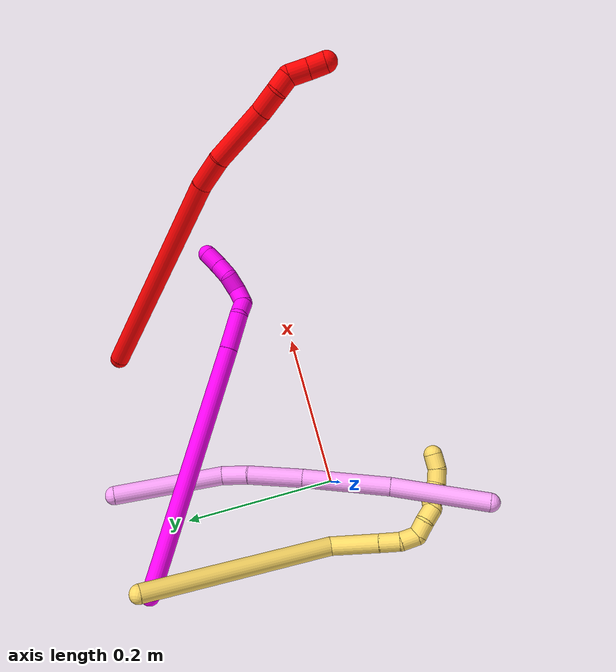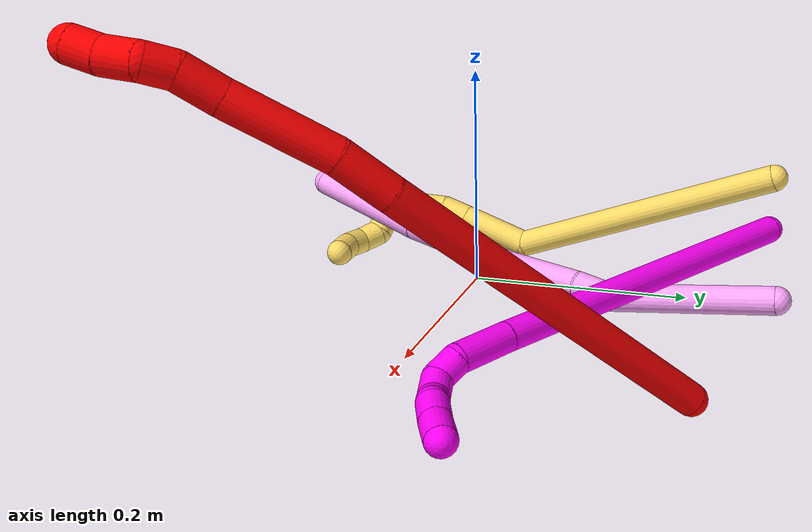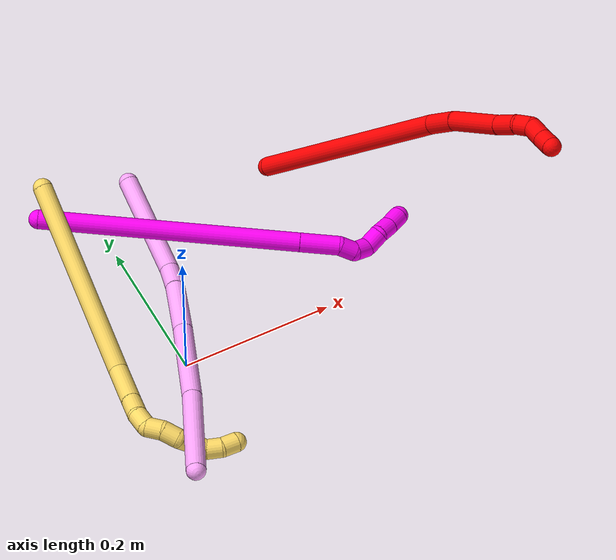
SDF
<sdf version="1.7">
 <world name="default">
  <model name="bin">
   <static>1</static>
   <link name="bottom">
    <collision name="collision-bottom">
     <pose>0 0 -0.01 0 -0 0</pose>
     <geometry><box><size>0.8 0.6 0.02</size></box></geometry>
     <surface>
      <friction><ode><mu>100</mu><mu2>100</mu2></ode></friction>
      <contact><collide_bitmask>65535</collide_bitmask></contact>
     </surface>
    </collision>
   </link>
   <link name="west_wall">
    <collision name="collision-west_wall">
     <pose>-0.41 0 0.1 0 -0 0</pose>
     <geometry><box><size>0.02 0.6 0.2</size></box></geometry>
     <surface>
      <friction><ode><mu>100</mu><mu2>100</mu2></ode></friction>
      <contact><collide_bitmask>65535</collide_bitmask></contact>
     </surface>
    </collision>
   </link>
   <link name="east_wall">
    <collision name="collision-east_wall">
     <pose>0.41 0 0.1 0 -0 0</pose>
     <geometry><box><size>0.02 0.6 0.2</size></box></geometry>
     <surface>
      <friction><ode><mu>100</mu><mu2>100</mu2></ode></friction>
      <contact><collide_bitmask>65535</collide_bitmask></contact>
     </surface>
    </collision>
   </link>
   <link name="south_wall">
    <collision name="collision-south_wall">
     <pose>0 -0.31 0.1 0 -0 0</pose>
     <geometry><box><size>0.8 0.02 0.2</size></box></geometry>
     <surface>
      <friction><ode><mu>100</mu><mu2>100</mu2></ode></friction>
      <contact><collide_bitmask>65535</collide_bitmask></contact>
     </surface>
    </collision>
   </link>
   <link name="north_wall">
    <collision name="collision-north_wall">
     <pose>0 0.31 0.1 0 -0 0</pose>
     <geometry><box><size>0.8 0.02 0.2</size></box></geometry>
     <surface>
      <friction><ode><mu>100</mu><mu2>100</mu2></ode></friction>
      <contact><collide_bitmask>65535</collide_bitmask></contact>
     </surface>
    </collision>
   </link>
  </model>
  <model name="2">
   <static>0</static>
   <link name="2">
    <collision name="collision-cylinder-e_1_1_4">
     <pose>0.062028 -0.040811 0.123555 0.319023 0.444832 0.072735</pose>
     <geometry><cylinder><radius>0.0125</radius><length>0.288296</length></cylinder></geometry>
     <surface>
      <friction><ode><mu>1.16</mu><mu2>1.16</mu2><slip1>0</slip1><slip2>0</slip2></ode></friction>
      <contact><ode><kp>1e+06</kp><kd>1</kd><max_vel>0</max_vel><min_depth>0.001</min_depth></ode></contact>
     </surface>
    </collision>
    <visual name="visual-cylinder-e_1_1_4">
     <pose>0.062028 -0.040811 0.123555 0.319023 0.444832 0.072735</pose>
     <geometry><cylinder><radius>0.0125</radius><length>0.288296</length></cylinder></geometry>
     <material><ambient>1 0 0 1</ambient></material>
    </visual>
    <collision name="collision-cylinder-e_2_4_5">
     <pose>0.130399 -0.088785 0.265115 0.378667 0.316359 0.061115</pose>
     <geometry><cylinder><radius>0.0125</radius><length>0.040781</length></cylinder></geometry>
     <surface>
      <friction><ode><mu>1.16</mu><mu2>1.16</mu2><slip1>0</slip1><slip2>0</slip2></ode></friction>
      <contact><ode><kp>1e+06</kp><kd>1</kd><max_vel>0</max_vel><min_depth>0.001</min_depth></ode></contact>
     </surface>
    </collision>
    <visual name="visual-cylinder-e_2_4_5">
     <pose>0.130399 -0.088785 0.265115 0.378667 0.316359 0.061115</pose>
     <geometry><cylinder><radius>0.0125</radius><length>0.040781</length></cylinder></geometry>
     <material><ambient>1 0 0 1</ambient></material>
    </visual>
    <collision name="collision-cylinder-e_3_5_6">
     <pose>0.147585 -0.11514 0.313843 0.558342 0.29083 0.083912</pose>
     <geometry><cylinder><radius>0.0125</radius><length>0.075623</length></cylinder></geometry>
     <surface>
      <friction><ode><mu>1.16</mu><mu2>1.16</mu2><slip1>0</slip1><slip2>0</slip2></ode></friction>
      <contact><ode><kp>1e+06</kp><kd>1</kd><max_vel>0</max_vel><min_depth>0.001</min_depth></ode></contact>
     </surface>
    </collision>
    <visual name="visual-cylinder-e_3_5_6">
     <pose>0.147585 -0.11514 0.313843 0.558342 0.29083 0.083912</pose>
     <geometry><cylinder><radius>0.0125</radius><length>0.075623</length></cylinder></geometry>
     <material><ambient>1 0 0 1</ambient></material>
    </visual>
    <collision name="collision-cylinder-e_4_6_7">
     <pose>0.163206 -0.140733 0.357169 0.470003 0.325964 0.078702</pose>
     <geometry><cylinder><radius>0.0125</radius><length>0.029845</length></cylinder></geometry>
     <surface>
      <friction><ode><mu>1.16</mu><mu2>1.16</mu2><slip1>0</slip1><slip2>0</slip2></ode></friction>
      <contact><ode><kp>1e+06</kp><kd>1</kd><max_vel>0</max_vel><min_depth>0.001</min_depth></ode></contact>
     </surface>
    </collision>
    <visual name="visual-cylinder-e_4_6_7">
     <pose>0.163206 -0.140733 0.357169 0.470003 0.325964 0.078702</pose>
     <geometry><cylinder><radius>0.0125</radius><length>0.029845</length></cylinder></geometry>
     <material><ambient>1 0 0 1</ambient></material>
    </visual>
    <collision name="collision-cylinder-e_5_7_8">
     <pose>0.172844 -0.153178 0.376415 0.738287 0.495998 0.195301</pose>
     <geometry><cylinder><radius>0.0125</radius><length>0.020419</length></cylinder></geometry>
     <surface>
      <friction><ode><mu>1.16</mu><mu2>1.16</mu2><slip1>0</slip1><slip2>0</slip2></ode></friction>
      <contact><ode><kp>1e+06</kp><kd>1</kd><max_vel>0</max_vel><min_depth>0.001</min_depth></ode></contact>
     </surface>
    </collision>
    <visual name="visual-cylinder-e_5_7_8">
     <pose>0.172844 -0.153178 0.376415 0.738287 0.495998 0.195301</pose>
     <geometry><cylinder><radius>0.0125</radius><length>0.020419</length></cylinder></geometry>
     <material><ambient>1 0 0 1</ambient></material>
    </visual>
    <collision name="collision-cylinder-e_6_8_9">
     <pose>0.177481 -0.169571 0.38925 1.03153 -0.018317 -0.010385</pose>
     <geometry><cylinder><radius>0.0125</radius><length>0.024127</length></cylinder></geometry>
     <surface>
      <friction><ode><mu>1.16</mu><mu2>1.16</mu2><slip1>0</slip1><slip2>0</slip2></ode></friction>
      <contact><ode><kp>1e+06</kp><kd>1</kd><max_vel>0</max_vel><min_depth>0.001</min_depth></ode></contact>
     </surface>
    </collision>
    <visual name="visual-cylinder-e_6_8_9">
     <pose>0.177481 -0.169571 0.38925 1.03153 -0.018317 -0.010385</pose>
     <geometry><cylinder><radius>0.0125</radius><length>0.024127</length></cylinder></geometry>
     <material><ambient>1 0 0 1</ambient></material>
    </visual>
    <collision name="collision-cylinder-e_7_9_2">
     <pose>0.176605 -0.187909 0.402156 0.871936 -0.062768 -0.029249</pose>
     <geometry><cylinder><radius>0.0125</radius><length>0.020909</length></cylinder></geometry>
     <surface>
      <friction><ode><mu>1.16</mu><mu2>1.16</mu2><slip1>0</slip1><slip2>0</slip2></ode></friction>
      <contact><ode><kp>1e+06</kp><kd>1</kd><max_vel>0</max_vel><min_depth>0.001</min_depth></ode></contact>
     </surface>
    </collision>
    <visual name="visual-cylinder-e_7_9_2">
     <pose>0.176605 -0.187909 0.402156 0.871936 -0.062768 -0.029249</pose>
     <geometry><cylinder><radius>0.0125</radius><length>0.020909</length></cylinder></geometry>
     <material><ambient>1 0 0 1</ambient></material>
    </visual>
    <collision name="collision-sphere-2">
     <pose>0.175949 -0.195897 0.408868 0 -0 0</pose>
     <geometry><sphere><radius>0.0125</radius></sphere></geometry>
     <surface>
      <friction><ode><mu>1.16</mu><mu2>1.16</mu2><slip1>0</slip1><slip2>0</slip2></ode></friction>
      <contact><ode><kp>1e+06</kp><kd>1</kd><max_vel>0</max_vel><min_depth>0.001</min_depth></ode></contact>
     </surface>
    </collision>
    <visual name="visual-sphere-2">
     <pose>0.175949 -0.195897 0.408868 0 -0 0</pose>
     <geometry><sphere><radius>0.0125</radius></sphere></geometry>
     <material><ambient>1 0 0 1</ambient></material>
    </visual>
    <collision name="collision-sphere-9">
     <pose>0.177261 -0.179921 0.395443 0 -0 0</pose>
     <geometry><sphere><radius>0.0125</radius></sphere></geometry>
     <surface>
      <friction><ode><mu>1.16</mu><mu2>1.16</mu2><slip1>0</slip1><slip2>0</slip2></ode></friction>
      <contact><ode><kp>1e+06</kp><kd>1</kd><max_vel>0</max_vel><min_depth>0.001</min_depth></ode></contact>
     </surface>
    </collision>
    <visual name="visual-sphere-9">
     <pose>0.177261 -0.179921 0.395443 0 -0 0</pose>
     <geometry><sphere><radius>0.0125</radius></sphere></geometry>
     <material><ambient>1 0 0 1</ambient></material>
    </visual>
    <collision name="collision-sphere-4">
     <pose>0.124056 -0.081621 0.247109 0 -0 0</pose>
     <geometry><sphere><radius>0.0125</radius></sphere></geometry>
     <surface>
      <friction><ode><mu>1.16</mu><mu2>1.16</mu2><slip1>0</slip1><slip2>0</slip2></ode></friction>
      <contact><ode><kp>1e+06</kp><kd>1</kd><max_vel>0</max_vel><min_depth>0.001</min_depth></ode></contact>
     </surface>
    </collision>
    <visual name="visual-sphere-4">
     <pose>0.124056 -0.081621 0.247109 0 -0 0</pose>
     <geometry><sphere><radius>0.0125</radius></sphere></geometry>
     <material><ambient>1 0 0 1</ambient></material>
    </visual>
    <collision name="collision-sphere-1">
     <geometry><sphere><radius>0.0125</radius></sphere></geometry>
     <surface>
      <friction><ode><mu>1.16</mu><mu2>1.16</mu2><slip1>0</slip1><slip2>0</slip2></ode></friction>
      <contact><ode><kp>1e+06</kp><kd>1</kd><max_vel>0</max_vel><min_depth>0.001</min_depth></ode></contact>
     </surface>
    </collision>
    <visual name="visual-sphere-1">
     <geometry><sphere><radius>0.0125</radius></sphere></geometry>
     <material><ambient>1 0 0 1</ambient></material>
    </visual>
    <collision name="collision-sphere-8">
     <pose>0.177702 -0.159222 0.383056 0 -0 0</pose>
     <geometry><sphere><radius>0.0125</radius></sphere></geometry>
     <surface>
      <friction><ode><mu>1.16</mu><mu2>1.16</mu2><slip1>0</slip1><slip2>0</slip2></ode></friction>
      <contact><ode><kp>1e+06</kp><kd>1</kd><max_vel>0</max_vel><min_depth>0.001</min_depth></ode></contact>
     </surface>
    </collision>
    <visual name="visual-sphere-8">
     <pose>0.177702 -0.159222 0.383056 0 -0 0</pose>
     <geometry><sphere><radius>0.0125</radius></sphere></geometry>
     <material><ambient>1 0 0 1</ambient></material>
    </visual>
    <collision name="collision-sphere-5">
     <pose>0.136743 -0.095949 0.283121 0 -0 0</pose>
     <geometry><sphere><radius>0.0125</radius></sphere></geometry>
     <surface>
      <friction><ode><mu>1.16</mu><mu2>1.16</mu2><slip1>0</slip1><slip2>0</slip2></ode></friction>
      <contact><ode><kp>1e+06</kp><kd>1</kd><max_vel>0</max_vel><min_depth>0.001</min_depth></ode></contact>
     </surface>
    </collision>
    <visual name="visual-sphere-5">
     <pose>0.136743 -0.095949 0.283121 0 -0 0</pose>
     <geometry><sphere><radius>0.0125</radius></sphere></geometry>
     <material><ambient>1 0 0 1</ambient></material>
    </visual>
    <collision name="collision-sphere-6">
     <pose>0.158428 -0.13433 0.344566 0 -0 0</pose>
     <geometry><sphere><radius>0.0125</radius></sphere></geometry>
     <surface>
      <friction><ode><mu>1.16</mu><mu2>1.16</mu2><slip1>0</slip1><slip2>0</slip2></ode></friction>
      <contact><ode><kp>1e+06</kp><kd>1</kd><max_vel>0</max_vel><min_depth>0.001</min_depth></ode></contact>
     </surface>
    </collision>
    <visual name="visual-sphere-6">
     <pose>0.158428 -0.13433 0.344566 0 -0 0</pose>
     <geometry><sphere><radius>0.0125</radius></sphere></geometry>
     <material><ambient>1 0 0 1</ambient></material>
    </visual>
    <collision name="collision-sphere-7">
     <pose>0.167985 -0.147135 0.369773 0 -0 0</pose>
     <geometry><sphere><radius>0.0125</radius></sphere></geometry>
     <surface>
      <friction><ode><mu>1.16</mu><mu2>1.16</mu2><slip1>0</slip1><slip2>0</slip2></ode></friction>
      <contact><ode><kp>1e+06</kp><kd>1</kd><max_vel>0</max_vel><min_depth>0.001</min_depth></ode></contact>
     </surface>
    </collision>
    <visual name="visual-sphere-7">
     <pose>0.167985 -0.147135 0.369773 0 -0 0</pose>
     <geometry><sphere><radius>0.0125</radius></sphere></geometry>
     <material><ambient>1 0 0 1</ambient></material>
    </visual>
    <inertial>
     <pose>0.101472 -0.078883 0.212623 0 -0 0</pose>
     <mass>0.5</mass>
     <inertia>
      <ixx>0.00201</ixx>
      <ixy>0</ixy>
      <ixz>0</ixz>
      <iyy>0.002088</iyy>
      <iyz>0</iyz>
      <izz>-0.000251</izz>
     </inertia>
    </inertial>
   </link>
   <pose>0.23869 0.235308 0.011498 0.439195 0.061565 0.044672</pose>
  </model>
  <model name="4">
   <static>0</static>
   <link name="4">
    <collision name="collision-cylinder-e_1_1_4">
     <pose>-0.030497 -0.031331 -0.057813 2.64497 -0.434256 -1.43208</pose>
     <geometry><cylinder><radius>0.0125</radius><length>0.144969</length></cylinder></geometry>
     <surface>
      <friction><ode><mu>1.16</mu><mu2>1.16</mu2><slip1>0</slip1><slip2>0</slip2></ode></friction>
      <contact><ode><kp>1e+06</kp><kd>1</kd><max_vel>0</max_vel><min_depth>0.001</min_depth></ode></contact>
     </surface>
    </collision>
    <visual name="visual-cylinder-e_1_1_4">
     <pose>-0.030497 -0.031331 -0.057813 2.64497 -0.434256 -1.43208</pose>
     <geometry><cylinder><radius>0.0125</radius><length>0.144969</length></cylinder></geometry>
     <material><ambient>1 0.65098 0.996078 1</ambient></material>
    </visual>
    <collision name="collision-cylinder-e_2_4_5">
     <pose>-0.063681 -0.068301 -0.132151 2.81268 -0.152722 -0.863978</pose>
     <geometry><cylinder><radius>0.0125</radius><length>0.035333</length></cylinder></geometry>
     <surface>
      <friction><ode><mu>1.16</mu><mu2>1.16</mu2><slip1>0</slip1><slip2>0</slip2></ode></friction>
      <contact><ode><kp>1e+06</kp><kd>1</kd><max_vel>0</max_vel><min_depth>0.001</min_depth></ode></contact>
     </surface>
    </collision>
    <visual name="visual-cylinder-e_2_4_5">
     <pose>-0.063681 -0.068301 -0.132151 2.81268 -0.152722 -0.863978</pose>
     <geometry><cylinder><radius>0.0125</radius><length>0.035333</length></cylinder></geometry>
     <material><ambient>1 0.65098 0.996078 1</ambient></material>
    </visual>
    <collision name="collision-cylinder-e_3_5_6">
     <pose>-0.071389 -0.090406 -0.181101 2.67175 -0.13719 -0.559065</pose>
     <geometry><cylinder><radius>0.0125</radius><length>0.073422</length></cylinder></geometry>
     <surface>
      <friction><ode><mu>1.16</mu><mu2>1.16</mu2><slip1>0</slip1><slip2>0</slip2></ode></friction>
      <contact><ode><kp>1e+06</kp><kd>1</kd><max_vel>0</max_vel><min_depth>0.001</min_depth></ode></contact>
     </surface>
    </collision>
    <visual name="visual-cylinder-e_3_5_6">
     <pose>-0.071389 -0.090406 -0.181101 2.67175 -0.13719 -0.559065</pose>
     <geometry><cylinder><radius>0.0125</radius><length>0.073422</length></cylinder></geometry>
     <material><ambient>1 0.65098 0.996078 1</ambient></material>
    </visual>
    <collision name="collision-cylinder-e_4_6_7">
     <pose>-0.080668 -0.13096 -0.266716 2.71632 -0.07279 -0.334152</pose>
     <geometry><cylinder><radius>0.0125</radius><length>0.11709</length></cylinder></geometry>
     <surface>
      <friction><ode><mu>1.16</mu><mu2>1.16</mu2><slip1>0</slip1><slip2>0</slip2></ode></friction>
      <contact><ode><kp>1e+06</kp><kd>1</kd><max_vel>0</max_vel><min_depth>0.001</min_depth></ode></contact>
     </surface>
    </collision>
    <visual name="visual-cylinder-e_4_6_7">
     <pose>-0.080668 -0.13096 -0.266716 2.71632 -0.07279 -0.334152</pose>
     <geometry><cylinder><radius>0.0125</radius><length>0.11709</length></cylinder></geometry>
     <material><ambient>1 0.65098 0.996078 1</ambient></material>
    </visual>
    <collision name="collision-cylinder-e_5_7_2">
     <pose>-0.084585 -0.180998 -0.379055 2.72819 0.005268 0.025119</pose>
     <geometry><cylinder><radius>0.0125</radius><length>0.129186</length></cylinder></geometry>
     <surface>
      <friction><ode><mu>1.16</mu><mu2>1.16</mu2><slip1>0</slip1><slip2>0</slip2></ode></friction>
      <contact><ode><kp>1e+06</kp><kd>1</kd><max_vel>0</max_vel><min_depth>0.001</min_depth></ode></contact>
     </surface>
    </collision>
    <visual name="visual-cylinder-e_5_7_2">
     <pose>-0.084585 -0.180998 -0.379055 2.72819 0.005268 0.025119</pose>
     <geometry><cylinder><radius>0.0125</radius><length>0.129186</length></cylinder></geometry>
     <material><ambient>1 0.65098 0.996078 1</ambient></material>
    </visual>
    <collision name="collision-sphere-2">
     <pose>-0.084245 -0.206947 -0.438206 0 -0 0</pose>
     <geometry><sphere><radius>0.0125</radius></sphere></geometry>
     <surface>
      <friction><ode><mu>1.16</mu><mu2>1.16</mu2><slip1>0</slip1><slip2>0</slip2></ode></friction>
      <contact><ode><kp>1e+06</kp><kd>1</kd><max_vel>0</max_vel><min_depth>0.001</min_depth></ode></contact>
     </surface>
    </collision>
    <visual name="visual-sphere-2">
     <pose>-0.084245 -0.206947 -0.438206 0 -0 0</pose>
     <geometry><sphere><radius>0.0125</radius></sphere></geometry>
     <material><ambient>1 0.65098 0.996078 1</ambient></material>
    </visual>
    <collision name="collision-sphere-7">
     <pose>-0.084925 -0.15505 -0.319905 0 -0 0</pose>
     <geometry><sphere><radius>0.0125</radius></sphere></geometry>
     <surface>
      <friction><ode><mu>1.16</mu><mu2>1.16</mu2><slip1>0</slip1><slip2>0</slip2></ode></friction>
      <contact><ode><kp>1e+06</kp><kd>1</kd><max_vel>0</max_vel><min_depth>0.001</min_depth></ode></contact>
     </surface>
    </collision>
    <visual name="visual-sphere-7">
     <pose>-0.084925 -0.15505 -0.319905 0 -0 0</pose>
     <geometry><sphere><radius>0.0125</radius></sphere></geometry>
     <material><ambient>1 0.65098 0.996078 1</ambient></material>
    </visual>
    <collision name="collision-sphere-6">
     <pose>-0.07641 -0.106871 -0.213527 0 -0 0</pose>
     <geometry><sphere><radius>0.0125</radius></sphere></geometry>
     <surface>
      <friction><ode><mu>1.16</mu><mu2>1.16</mu2><slip1>0</slip1><slip2>0</slip2></ode></friction>
      <contact><ode><kp>1e+06</kp><kd>1</kd><max_vel>0</max_vel><min_depth>0.001</min_depth></ode></contact>
     </surface>
    </collision>
    <visual name="visual-sphere-6">
     <pose>-0.07641 -0.106871 -0.213527 0 -0 0</pose>
     <geometry><sphere><radius>0.0125</radius></sphere></geometry>
     <material><ambient>1 0.65098 0.996078 1</ambient></material>
    </visual>
    <collision name="collision-sphere-5">
     <pose>-0.066369 -0.073941 -0.148676 0 -0 0</pose>
     <geometry><sphere><radius>0.0125</radius></sphere></geometry>
     <surface>
      <friction><ode><mu>1.16</mu><mu2>1.16</mu2><slip1>0</slip1><slip2>0</slip2></ode></friction>
      <contact><ode><kp>1e+06</kp><kd>1</kd><max_vel>0</max_vel><min_depth>0.001</min_depth></ode></contact>
     </surface>
    </collision>
    <visual name="visual-sphere-5">
     <pose>-0.066369 -0.073941 -0.148676 0 -0 0</pose>
     <geometry><sphere><radius>0.0125</radius></sphere></geometry>
     <material><ambient>1 0.65098 0.996078 1</ambient></material>
    </visual>
    <collision name="collision-sphere-1">
     <geometry><sphere><radius>0.0125</radius></sphere></geometry>
     <surface>
      <friction><ode><mu>1.16</mu><mu2>1.16</mu2><slip1>0</slip1><slip2>0</slip2></ode></friction>
      <contact><ode><kp>1e+06</kp><kd>1</kd><max_vel>0</max_vel><min_depth>0.001</min_depth></ode></contact>
     </surface>
    </collision>
    <visual name="visual-sphere-1">
     <geometry><sphere><radius>0.0125</radius></sphere></geometry>
     <material><ambient>1 0.65098 0.996078 1</ambient></material>
    </visual>
    <collision name="collision-sphere-4">
     <pose>-0.060994 -0.062661 -0.115626 0 -0 0</pose>
     <geometry><sphere><radius>0.0125</radius></sphere></geometry>
     <surface>
      <friction><ode><mu>1.16</mu><mu2>1.16</mu2><slip1>0</slip1><slip2>0</slip2></ode></friction>
      <contact><ode><kp>1e+06</kp><kd>1</kd><max_vel>0</max_vel><min_depth>0.001</min_depth></ode></contact>
     </surface>
    </collision>
    <visual name="visual-sphere-4">
     <pose>-0.060994 -0.062661 -0.115626 0 -0 0</pose>
     <geometry><sphere><radius>0.0125</radius></sphere></geometry>
     <material><ambient>1 0.65098 0.996078 1</ambient></material>
    </visual>
    <inertial>
     <pose>-0.064571 -0.104619 -0.213091 0 -0 0</pose>
     <mass>0.5</mass>
     <inertia>
      <ixx>7.8e-05</ixx>
      <ixy>0</ixy>
      <ixz>0</ixz>
      <iyy>-0.000608</iyy>
      <iyz>0</iyz>
      <izz>0.000351</izz>
     </inertia>
    </inertial>
   </link>
   <pose>0.059568 0.283453 0.027684 2.19006 -0.51745 2.61581</pose>
  </model>
  <model name="5">
   <static>0</static>
   <link name="5">
    <collision name="collision-cylinder-e_1_1_4">
     <pose>0.040796 -0.105328 0.064347 1.02238 0.319221 0.180106</pose>
     <geometry><cylinder><radius>0.0125</radius><length>0.259991</length></cylinder></geometry>
     <surface>
      <friction><ode><mu>1.16</mu><mu2>1.16</mu2><slip1>0</slip1><slip2>0</slip2></ode></friction>
      <contact><ode><kp>1e+06</kp><kd>1</kd><max_vel>0</max_vel><min_depth>0.001</min_depth></ode></contact>
     </surface>
    </collision>
    <visual name="visual-cylinder-e_1_1_4">
     <pose>0.040796 -0.105328 0.064347 1.02238 0.319221 0.180106</pose>
     <geometry><cylinder><radius>0.0125</radius><length>0.259991</length></cylinder></geometry>
     <material><ambient>1 0.858824 0.4 1</ambient></material>
    </visual>
    <collision name="collision-cylinder-e_2_4_5">
     <pose>0.077331 -0.243595 0.131337 1.49074 -0.128233 -0.118381</pose>
     <geometry><cylinder><radius>0.0125</radius><length>0.066638</length></cylinder></geometry>
     <surface>
      <friction><ode><mu>1.16</mu><mu2>1.16</mu2><slip1>0</slip1><slip2>0</slip2></ode></friction>
      <contact><ode><kp>1e+06</kp><kd>1</kd><max_vel>0</max_vel><min_depth>0.001</min_depth></ode></contact>
     </surface>
    </collision>
    <visual name="visual-cylinder-e_2_4_5">
     <pose>0.077331 -0.243595 0.131337 1.49074 -0.128233 -0.118381</pose>
     <geometry><cylinder><radius>0.0125</radius><length>0.066638</length></cylinder></geometry>
     <material><ambient>1 0.858824 0.4 1</ambient></material>
    </visual>
    <collision name="collision-cylinder-e_3_5_6">
     <pose>0.071391 -0.290325 0.135321 1.47384 -0.120606 -0.109468</pose>
     <geometry><cylinder><radius>0.0125</radius><length>0.027915</length></cylinder></geometry>
     <surface>
      <friction><ode><mu>1.16</mu><mu2>1.16</mu2><slip1>0</slip1><slip2>0</slip2></ode></friction>
      <contact><ode><kp>1e+06</kp><kd>1</kd><max_vel>0</max_vel><min_depth>0.001</min_depth></ode></contact>
     </surface>
    </collision>
    <visual name="visual-cylinder-e_3_5_6">
     <pose>0.071391 -0.290325 0.135321 1.47384 -0.120606 -0.109468</pose>
     <geometry><cylinder><radius>0.0125</radius><length>0.027915</length></cylinder></geometry>
     <material><ambient>1 0.858824 0.4 1</ambient></material>
    </visual>
    <collision name="collision-cylinder-e_4_6_7">
     <pose>0.068619 -0.314473 0.141274 1.15192 -0.096135 -0.062459</pose>
     <geometry><cylinder><radius>0.0125</radius><length>0.022779</length></cylinder></geometry>
     <surface>
      <friction><ode><mu>1.16</mu><mu2>1.16</mu2><slip1>0</slip1><slip2>0</slip2></ode></friction>
      <contact><ode><kp>1e+06</kp><kd>1</kd><max_vel>0</max_vel><min_depth>0.001</min_depth></ode></contact>
     </surface>
    </collision>
    <visual name="visual-cylinder-e_4_6_7">
     <pose>0.068619 -0.314473 0.141274 1.15192 -0.096135 -0.062459</pose>
     <geometry><cylinder><radius>0.0125</radius><length>0.022779</length></cylinder></geometry>
     <material><ambient>1 0.858824 0.4 1</ambient></material>
    </visual>
    <collision name="collision-cylinder-e_5_7_8">
     <pose>0.062981 -0.329247 0.154115 0.492518 -0.45285 -0.115686</pose>
     <geometry><cylinder><radius>0.0125</radius><length>0.020775</length></cylinder></geometry>
     <surface>
      <friction><ode><mu>1.16</mu><mu2>1.16</mu2><slip1>0</slip1><slip2>0</slip2></ode></friction>
      <contact><ode><kp>1e+06</kp><kd>1</kd><max_vel>0</max_vel><min_depth>0.001</min_depth></ode></contact>
     </surface>
    </collision>
    <visual name="visual-cylinder-e_5_7_8">
     <pose>0.062981 -0.329247 0.154115 0.492518 -0.45285 -0.115686</pose>
     <geometry><cylinder><radius>0.0125</radius><length>0.020775</length></cylinder></geometry>
     <material><ambient>1 0.858824 0.4 1</ambient></material>
    </visual>
    <collision name="collision-cylinder-e_6_8_9">
     <pose>0.057087 -0.338205 0.171481 0.461361 -0.131438 -0.030912</pose>
     <geometry><cylinder><radius>0.0125</radius><length>0.020582</length></cylinder></geometry>
     <surface>
      <friction><ode><mu>1.16</mu><mu2>1.16</mu2><slip1>0</slip1><slip2>0</slip2></ode></friction>
      <contact><ode><kp>1e+06</kp><kd>1</kd><max_vel>0</max_vel><min_depth>0.001</min_depth></ode></contact>
     </surface>
    </collision>
    <visual name="visual-cylinder-e_6_8_9">
     <pose>0.057087 -0.338205 0.171481 0.461361 -0.131438 -0.030912</pose>
     <geometry><cylinder><radius>0.0125</radius><length>0.020582</length></cylinder></geometry>
     <material><ambient>1 0.858824 0.4 1</ambient></material>
    </visual>
    <collision name="collision-cylinder-e_7_9_10">
     <pose>0.0573 -0.340597 0.19068 -0.210451 0.150629 -0.015939</pose>
     <geometry><cylinder><radius>0.0125</radius><length>0.020816</length></cylinder></geometry>
     <surface>
      <friction><ode><mu>1.16</mu><mu2>1.16</mu2><slip1>0</slip1><slip2>0</slip2></ode></friction>
      <contact><ode><kp>1e+06</kp><kd>1</kd><max_vel>0</max_vel><min_depth>0.001</min_depth></ode></contact>
     </surface>
    </collision>
    <visual name="visual-cylinder-e_7_9_10">
     <pose>0.0573 -0.340597 0.19068 -0.210451 0.150629 -0.015939</pose>
     <geometry><cylinder><radius>0.0125</radius><length>0.020816</length></cylinder></geometry>
     <material><ambient>1 0.858824 0.4 1</ambient></material>
    </visual>
    <collision name="collision-cylinder-e_8_10_11">
     <pose>0.057424 -0.342186 0.210088 0.380607 -0.141932 -0.027385</pose>
     <geometry><cylinder><radius>0.0125</radius><length>0.020335</length></cylinder></geometry>
     <surface>
      <friction><ode><mu>1.16</mu><mu2>1.16</mu2><slip1>0</slip1><slip2>0</slip2></ode></friction>
      <contact><ode><kp>1e+06</kp><kd>1</kd><max_vel>0</max_vel><min_depth>0.001</min_depth></ode></contact>
     </surface>
    </collision>
    <visual name="visual-cylinder-e_8_10_11">
     <pose>0.057424 -0.342186 0.210088 0.380607 -0.141932 -0.027385</pose>
     <geometry><cylinder><radius>0.0125</radius><length>0.020335</length></cylinder></geometry>
     <material><ambient>1 0.858824 0.4 1</ambient></material>
    </visual>
    <collision name="collision-cylinder-e_9_11_12">
     <pose>0.050492 -0.346014 0.227884 0.01053 -0.576388 -0.003122</pose>
     <geometry><cylinder><radius>0.0125</radius><length>0.020161</length></cylinder></geometry>
     <surface>
      <friction><ode><mu>1.16</mu><mu2>1.16</mu2><slip1>0</slip1><slip2>0</slip2></ode></friction>
      <contact><ode><kp>1e+06</kp><kd>1</kd><max_vel>0</max_vel><min_depth>0.001</min_depth></ode></contact>
     </surface>
    </collision>
    <visual name="visual-cylinder-e_9_11_12">
     <pose>0.050492 -0.346014 0.227884 0.01053 -0.576388 -0.003122</pose>
     <geometry><cylinder><radius>0.0125</radius><length>0.020161</length></cylinder></geometry>
     <material><ambient>1 0.858824 0.4 1</ambient></material>
    </visual>
    <collision name="collision-cylinder-e_10_12_2">
     <pose>0.039728 -0.343005 0.244255 -0.372876 -0.554819 0.107321</pose>
     <geometry><cylinder><radius>0.0125</radius><length>0.020009</length></cylinder></geometry>
     <surface>
      <friction><ode><mu>1.16</mu><mu2>1.16</mu2><slip1>0</slip1><slip2>0</slip2></ode></friction>
      <contact><ode><kp>1e+06</kp><kd>1</kd><max_vel>0</max_vel><min_depth>0.001</min_depth></ode></contact>
     </surface>
    </collision>
    <visual name="visual-cylinder-e_10_12_2">
     <pose>0.039728 -0.343005 0.244255 -0.372876 -0.554819 0.107321</pose>
     <geometry><cylinder><radius>0.0125</radius><length>0.020009</length></cylinder></geometry>
     <material><ambient>1 0.858824 0.4 1</ambient></material>
    </visual>
    <collision name="collision-sphere-2">
     <pose>0.034457 -0.339908 0.252174 0 -0 0</pose>
     <geometry><sphere><radius>0.0125</radius></sphere></geometry>
     <surface>
      <friction><ode><mu>1.16</mu><mu2>1.16</mu2><slip1>0</slip1><slip2>0</slip2></ode></friction>
      <contact><ode><kp>1e+06</kp><kd>1</kd><max_vel>0</max_vel><min_depth>0.001</min_depth></ode></contact>
     </surface>
    </collision>
    <visual name="visual-sphere-2">
     <pose>0.034457 -0.339908 0.252174 0 -0 0</pose>
     <geometry><sphere><radius>0.0125</radius></sphere></geometry>
     <material><ambient>1 0.858824 0.4 1</ambient></material>
    </visual>
    <collision name="collision-sphere-12">
     <pose>0.044998 -0.346103 0.236335 0 -0 0</pose>
     <geometry><sphere><radius>0.0125</radius></sphere></geometry>
     <surface>
      <friction><ode><mu>1.16</mu><mu2>1.16</mu2><slip1>0</slip1><slip2>0</slip2></ode></friction>
      <contact><ode><kp>1e+06</kp><kd>1</kd><max_vel>0</max_vel><min_depth>0.001</min_depth></ode></contact>
     </surface>
    </collision>
    <visual name="visual-sphere-12">
     <pose>0.044998 -0.346103 0.236335 0 -0 0</pose>
     <geometry><sphere><radius>0.0125</radius></sphere></geometry>
     <material><ambient>1 0.858824 0.4 1</ambient></material>
    </visual>
    <collision name="collision-sphere-11">
     <pose>0.055986 -0.345925 0.219433 0 -0 0</pose>
     <geometry><sphere><radius>0.0125</radius></sphere></geometry>
     <surface>
      <friction><ode><mu>1.16</mu><mu2>1.16</mu2><slip1>0</slip1><slip2>0</slip2></ode></friction>
      <contact><ode><kp>1e+06</kp><kd>1</kd><max_vel>0</max_vel><min_depth>0.001</min_depth></ode></contact>
     </surface>
    </collision>
    <visual name="visual-sphere-11">
     <pose>0.055986 -0.345925 0.219433 0 -0 0</pose>
     <geometry><sphere><radius>0.0125</radius></sphere></geometry>
     <material><ambient>1 0.858824 0.4 1</ambient></material>
    </visual>
    <collision name="collision-sphere-10">
     <pose>0.058862 -0.338447 0.200743 0 -0 0</pose>
     <geometry><sphere><radius>0.0125</radius></sphere></geometry>
     <surface>
      <friction><ode><mu>1.16</mu><mu2>1.16</mu2><slip1>0</slip1><slip2>0</slip2></ode></friction>
      <contact><ode><kp>1e+06</kp><kd>1</kd><max_vel>0</max_vel><min_depth>0.001</min_depth></ode></contact>
     </surface>
    </collision>
    <visual name="visual-sphere-10">
     <pose>0.058862 -0.338447 0.200743 0 -0 0</pose>
     <geometry><sphere><radius>0.0125</radius></sphere></geometry>
     <material><ambient>1 0.858824 0.4 1</ambient></material>
    </visual>
    <collision name="collision-sphere-9">
     <pose>0.055738 -0.342747 0.180617 0 -0 0</pose>
     <geometry><sphere><radius>0.0125</radius></sphere></geometry>
     <surface>
      <friction><ode><mu>1.16</mu><mu2>1.16</mu2><slip1>0</slip1><slip2>0</slip2></ode></friction>
      <contact><ode><kp>1e+06</kp><kd>1</kd><max_vel>0</max_vel><min_depth>0.001</min_depth></ode></contact>
     </surface>
    </collision>
    <visual name="visual-sphere-9">
     <pose>0.055738 -0.342747 0.180617 0 -0 0</pose>
     <geometry><sphere><radius>0.0125</radius></sphere></geometry>
     <material><ambient>1 0.858824 0.4 1</ambient></material>
    </visual>
    <collision name="collision-sphere-4">
     <pose>0.081592 -0.210656 0.128695 0 -0 0</pose>
     <geometry><sphere><radius>0.0125</radius></sphere></geometry>
     <surface>
      <friction><ode><mu>1.16</mu><mu2>1.16</mu2><slip1>0</slip1><slip2>0</slip2></ode></friction>
      <contact><ode><kp>1e+06</kp><kd>1</kd><max_vel>0</max_vel><min_depth>0.001</min_depth></ode></contact>
     </surface>
    </collision>
    <visual name="visual-sphere-4">
     <pose>0.081592 -0.210656 0.128695 0 -0 0</pose>
     <geometry><sphere><radius>0.0125</radius></sphere></geometry>
     <material><ambient>1 0.858824 0.4 1</ambient></material>
    </visual>
    <collision name="collision-sphere-1">
     <geometry><sphere><radius>0.0125</radius></sphere></geometry>
     <surface>
      <friction><ode><mu>1.16</mu><mu2>1.16</mu2><slip1>0</slip1><slip2>0</slip2></ode></friction>
      <contact><ode><kp>1e+06</kp><kd>1</kd><max_vel>0</max_vel><min_depth>0.001</min_depth></ode></contact>
     </surface>
    </collision>
    <visual name="visual-sphere-1">
     <geometry><sphere><radius>0.0125</radius></sphere></geometry>
     <material><ambient>1 0.858824 0.4 1</ambient></material>
    </visual>
    <collision name="collision-sphere-8">
     <pose>0.058436 -0.333663 0.162345 0 -0 0</pose>
     <geometry><sphere><radius>0.0125</radius></sphere></geometry>
     <surface>
      <friction><ode><mu>1.16</mu><mu2>1.16</mu2><slip1>0</slip1><slip2>0</slip2></ode></friction>
      <contact><ode><kp>1e+06</kp><kd>1</kd><max_vel>0</max_vel><min_depth>0.001</min_depth></ode></contact>
     </surface>
    </collision>
    <visual name="visual-sphere-8">
     <pose>0.058436 -0.333663 0.162345 0 -0 0</pose>
     <geometry><sphere><radius>0.0125</radius></sphere></geometry>
     <material><ambient>1 0.858824 0.4 1</ambient></material>
    </visual>
    <collision name="collision-sphere-5">
     <pose>0.07307 -0.276534 0.13398 0 -0 0</pose>
     <geometry><sphere><radius>0.0125</radius></sphere></geometry>
     <surface>
      <friction><ode><mu>1.16</mu><mu2>1.16</mu2><slip1>0</slip1><slip2>0</slip2></ode></friction>
      <contact><ode><kp>1e+06</kp><kd>1</kd><max_vel>0</max_vel><min_depth>0.001</min_depth></ode></contact>
     </surface>
    </collision>
    <visual name="visual-sphere-5">
     <pose>0.07307 -0.276534 0.13398 0 -0 0</pose>
     <geometry><sphere><radius>0.0125</radius></sphere></geometry>
     <material><ambient>1 0.858824 0.4 1</ambient></material>
    </visual>
    <collision name="collision-sphere-6">
     <pose>0.069712 -0.304116 0.136663 0 -0 0</pose>
     <geometry><sphere><radius>0.0125</radius></sphere></geometry>
     <surface>
      <friction><ode><mu>1.16</mu><mu2>1.16</mu2><slip1>0</slip1><slip2>0</slip2></ode></friction>
      <contact><ode><kp>1e+06</kp><kd>1</kd><max_vel>0</max_vel><min_depth>0.001</min_depth></ode></contact>
     </surface>
    </collision>
    <visual name="visual-sphere-6">
     <pose>0.069712 -0.304116 0.136663 0 -0 0</pose>
     <geometry><sphere><radius>0.0125</radius></sphere></geometry>
     <material><ambient>1 0.858824 0.4 1</ambient></material>
    </visual>
    <collision name="collision-sphere-7">
     <pose>0.067525 -0.32483 0.145885 0 -0 0</pose>
     <geometry><sphere><radius>0.0125</radius></sphere></geometry>
     <surface>
      <friction><ode><mu>1.16</mu><mu2>1.16</mu2><slip1>0</slip1><slip2>0</slip2></ode></friction>
      <contact><ode><kp>1e+06</kp><kd>1</kd><max_vel>0</max_vel><min_depth>0.001</min_depth></ode></contact>
     </surface>
    </collision>
    <visual name="visual-sphere-7">
     <pose>0.067525 -0.32483 0.145885 0 -0 0</pose>
     <geometry><sphere><radius>0.0125</radius></sphere></geometry>
     <material><ambient>1 0.858824 0.4 1</ambient></material>
    </visual>
    <inertial>
     <pose>0.051945 -0.201146 0.113863 0 -0 0</pose>
     <mass>0.5</mass>
     <inertia>
      <ixx>0.001667</ixx>
      <ixy>0</ixy>
      <ixz>0</ixz>
      <iyy>0.00106</iyy>
      <iyz>0</iyz>
      <izz>0.000791</izz>
     </inertia>
    </inertial>
   </link>
   <pose>-0.066005 0.268392 0.101568 -2.75777 0.963863 3.13124</pose>
  </model>
  <model name="10">
   <static>0</static>
   <link name="10">
    <collision name="collision-cylinder-e_1_1_4">
     <pose>0.082308 -0.111896 -0.095052 2.27498 0.510954 1.02792</pose>
     <geometry><cylinder><radius>0.0125</radius><length>0.336632</length></cylinder></geometry>
     <surface>
      <friction><ode><mu>1.16</mu><mu2>1.16</mu2><slip1>0</slip1><slip2>0</slip2></ode></friction>
      <contact><ode><kp>1e+06</kp><kd>1</kd><max_vel>0</max_vel><min_depth>0.001</min_depth></ode></contact>
     </surface>
    </collision>
    <visual name="visual-cylinder-e_1_1_4">
     <pose>0.082308 -0.111896 -0.095052 2.27498 0.510954 1.02792</pose>
     <geometry><cylinder><radius>0.0125</radius><length>0.336632</length></cylinder></geometry>
     <material><ambient>1 0 0.964706 1</ambient></material>
    </visual>
    <collision name="collision-cylinder-e_2_4_5">
     <pose>0.176477 -0.240953 -0.20459 2.27183 0.485893 0.980196</pose>
     <geometry><cylinder><radius>0.0125</radius><length>0.050793</length></cylinder></geometry>
     <surface>
      <friction><ode><mu>1.16</mu><mu2>1.16</mu2><slip1>0</slip1><slip2>0</slip2></ode></friction>
      <contact><ode><kp>1e+06</kp><kd>1</kd><max_vel>0</max_vel><min_depth>0.001</min_depth></ode></contact>
     </surface>
    </collision>
    <visual name="visual-cylinder-e_2_4_5">
     <pose>0.176477 -0.240953 -0.20459 2.27183 0.485893 0.980196</pose>
     <geometry><cylinder><radius>0.0125</radius><length>0.050793</length></cylinder></geometry>
     <material><ambient>1 0 0.964706 1</ambient></material>
    </visual>
    <collision name="collision-cylinder-e_3_5_6">
     <pose>0.190481 -0.267963 -0.223116 1.96026 0.19874 0.295213</pose>
     <geometry><cylinder><radius>0.0125</radius><length>0.021717</length></cylinder></geometry>
     <surface>
      <friction><ode><mu>1.16</mu><mu2>1.16</mu2><slip1>0</slip1><slip2>0</slip2></ode></friction>
      <contact><ode><kp>1e+06</kp><kd>1</kd><max_vel>0</max_vel><min_depth>0.001</min_depth></ode></contact>
     </surface>
    </collision>
    <visual name="visual-cylinder-e_3_5_6">
     <pose>0.190481 -0.267963 -0.223116 1.96026 0.19874 0.295213</pose>
     <geometry><cylinder><radius>0.0125</radius><length>0.021717</length></cylinder></geometry>
     <material><ambient>1 0 0.964706 1</ambient></material>
    </visual>
    <collision name="collision-cylinder-e_4_6_7">
     <pose>0.190192 -0.284076 -0.235834 2.51608 -0.223497 -0.668038</pose>
     <geometry><cylinder><radius>0.0125</radius><length>0.021949</length></cylinder></geometry>
     <surface>
      <friction><ode><mu>1.16</mu><mu2>1.16</mu2><slip1>0</slip1><slip2>0</slip2></ode></friction>
      <contact><ode><kp>1e+06</kp><kd>1</kd><max_vel>0</max_vel><min_depth>0.001</min_depth></ode></contact>
     </surface>
    </collision>
    <visual name="visual-cylinder-e_4_6_7">
     <pose>0.190192 -0.284076 -0.235834 2.51608 -0.223497 -0.668038</pose>
     <geometry><cylinder><radius>0.0125</radius><length>0.021949</length></cylinder></geometry>
     <material><ambient>1 0 0.964706 1</ambient></material>
    </visual>
    <collision name="collision-cylinder-e_5_7_8">
     <pose>0.188022 -0.290819 -0.256343 3.10132 0.022163 1.00611</pose>
     <geometry><cylinder><radius>0.0125</radius><length>0.023693</length></cylinder></geometry>
     <surface>
      <friction><ode><mu>1.16</mu><mu2>1.16</mu2><slip1>0</slip1><slip2>0</slip2></ode></friction>
      <contact><ode><kp>1e+06</kp><kd>1</kd><max_vel>0</max_vel><min_depth>0.001</min_depth></ode></contact>
     </surface>
    </collision>
    <visual name="visual-cylinder-e_5_7_8">
     <pose>0.188022 -0.290819 -0.256343 3.10132 0.022163 1.00611</pose>
     <geometry><cylinder><radius>0.0125</radius><length>0.023693</length></cylinder></geometry>
     <material><ambient>1 0 0.964706 1</ambient></material>
    </visual>
    <collision name="collision-cylinder-e_6_8_9">
     <pose>0.184526 -0.295037 -0.277665 2.76603 -0.353094 -1.50775</pose>
     <geometry><cylinder><radius>0.0125</radius><length>0.021741</length></cylinder></geometry>
     <surface>
      <friction><ode><mu>1.16</mu><mu2>1.16</mu2><slip1>0</slip1><slip2>0</slip2></ode></friction>
      <contact><ode><kp>1e+06</kp><kd>1</kd><max_vel>0</max_vel><min_depth>0.001</min_depth></ode></contact>
     </surface>
    </collision>
    <visual name="visual-cylinder-e_6_8_9">
     <pose>0.184526 -0.295037 -0.277665 2.76603 -0.353094 -1.50775</pose>
     <geometry><cylinder><radius>0.0125</radius><length>0.021741</length></cylinder></geometry>
     <material><ambient>1 0 0.964706 1</ambient></material>
    </visual>
    <collision name="collision-cylinder-e_7_9_2">
     <pose>0.17646 -0.301893 -0.297619 2.85229 -0.375759 -1.83404</pose>
     <geometry><cylinder><radius>0.0125</radius><length>0.023474</length></cylinder></geometry>
     <surface>
      <friction><ode><mu>1.16</mu><mu2>1.16</mu2><slip1>0</slip1><slip2>0</slip2></ode></friction>
      <contact><ode><kp>1e+06</kp><kd>1</kd><max_vel>0</max_vel><min_depth>0.001</min_depth></ode></contact>
     </surface>
    </collision>
    <visual name="visual-cylinder-e_7_9_2">
     <pose>0.17646 -0.301893 -0.297619 2.85229 -0.375759 -1.83404</pose>
     <geometry><cylinder><radius>0.0125</radius><length>0.023474</length></cylinder></geometry>
     <material><ambient>1 0 0.964706 1</ambient></material>
    </visual>
    <collision name="collision-sphere-2">
     <pose>0.172152 -0.305008 -0.308084 0 -0 0</pose>
     <geometry><sphere><radius>0.0125</radius></sphere></geometry>
     <surface>
      <friction><ode><mu>1.16</mu><mu2>1.16</mu2><slip1>0</slip1><slip2>0</slip2></ode></friction>
      <contact><ode><kp>1e+06</kp><kd>1</kd><max_vel>0</max_vel><min_depth>0.001</min_depth></ode></contact>
     </surface>
    </collision>
    <visual name="visual-sphere-2">
     <pose>0.172152 -0.305008 -0.308084 0 -0 0</pose>
     <geometry><sphere><radius>0.0125</radius></sphere></geometry>
     <material><ambient>1 0 0.964706 1</ambient></material>
    </visual>
    <collision name="collision-sphere-9">
     <pose>0.180767 -0.298778 -0.287154 0 -0 0</pose>
     <geometry><sphere><radius>0.0125</radius></sphere></geometry>
     <surface>
      <friction><ode><mu>1.16</mu><mu2>1.16</mu2><slip1>0</slip1><slip2>0</slip2></ode></friction>
      <contact><ode><kp>1e+06</kp><kd>1</kd><max_vel>0</max_vel><min_depth>0.001</min_depth></ode></contact>
     </surface>
    </collision>
    <visual name="visual-sphere-9">
     <pose>0.180767 -0.298778 -0.287154 0 -0 0</pose>
     <geometry><sphere><radius>0.0125</radius></sphere></geometry>
     <material><ambient>1 0 0.964706 1</ambient></material>
    </visual>
    <collision name="collision-sphere-4">
     <pose>0.164616 -0.223792 -0.190105 0 -0 0</pose>
     <geometry><sphere><radius>0.0125</radius></sphere></geometry>
     <surface>
      <friction><ode><mu>1.16</mu><mu2>1.16</mu2><slip1>0</slip1><slip2>0</slip2></ode></friction>
      <contact><ode><kp>1e+06</kp><kd>1</kd><max_vel>0</max_vel><min_depth>0.001</min_depth></ode></contact>
     </surface>
    </collision>
    <visual name="visual-sphere-4">
     <pose>0.164616 -0.223792 -0.190105 0 -0 0</pose>
     <geometry><sphere><radius>0.0125</radius></sphere></geometry>
     <material><ambient>1 0 0.964706 1</ambient></material>
    </visual>
    <collision name="collision-sphere-1">
     <geometry><sphere><radius>0.0125</radius></sphere></geometry>
     <surface>
      <friction><ode><mu>1.16</mu><mu2>1.16</mu2><slip1>0</slip1><slip2>0</slip2></ode></friction>
      <contact><ode><kp>1e+06</kp><kd>1</kd><max_vel>0</max_vel><min_depth>0.001</min_depth></ode></contact>
     </surface>
    </collision>
    <visual name="visual-sphere-1">
     <geometry><sphere><radius>0.0125</radius></sphere></geometry>
     <material><ambient>1 0 0.964706 1</ambient></material>
    </visual>
    <collision name="collision-sphere-8">
     <pose>0.188285 -0.291296 -0.268176 0 -0 0</pose>
     <geometry><sphere><radius>0.0125</radius></sphere></geometry>
     <surface>
      <friction><ode><mu>1.16</mu><mu2>1.16</mu2><slip1>0</slip1><slip2>0</slip2></ode></friction>
      <contact><ode><kp>1e+06</kp><kd>1</kd><max_vel>0</max_vel><min_depth>0.001</min_depth></ode></contact>
     </surface>
    </collision>
    <visual name="visual-sphere-8">
     <pose>0.188285 -0.291296 -0.268176 0 -0 0</pose>
     <geometry><sphere><radius>0.0125</radius></sphere></geometry>
     <material><ambient>1 0 0.964706 1</ambient></material>
    </visual>
    <collision name="collision-sphere-5">
     <pose>0.188337 -0.258115 -0.219075 0 -0 0</pose>
     <geometry><sphere><radius>0.0125</radius></sphere></geometry>
     <surface>
      <friction><ode><mu>1.16</mu><mu2>1.16</mu2><slip1>0</slip1><slip2>0</slip2></ode></friction>
      <contact><ode><kp>1e+06</kp><kd>1</kd><max_vel>0</max_vel><min_depth>0.001</min_depth></ode></contact>
     </surface>
    </collision>
    <visual name="visual-sphere-5">
     <pose>0.188337 -0.258115 -0.219075 0 -0 0</pose>
     <geometry><sphere><radius>0.0125</radius></sphere></geometry>
     <material><ambient>1 0 0.964706 1</ambient></material>
    </visual>
    <collision name="collision-sphere-6">
     <pose>0.192625 -0.27781 -0.227158 0 -0 0</pose>
     <geometry><sphere><radius>0.0125</radius></sphere></geometry>
     <surface>
      <friction><ode><mu>1.16</mu><mu2>1.16</mu2><slip1>0</slip1><slip2>0</slip2></ode></friction>
      <contact><ode><kp>1e+06</kp><kd>1</kd><max_vel>0</max_vel><min_depth>0.001</min_depth></ode></contact>
     </surface>
    </collision>
    <visual name="visual-sphere-6">
     <pose>0.192625 -0.27781 -0.227158 0 -0 0</pose>
     <geometry><sphere><radius>0.0125</radius></sphere></geometry>
     <material><ambient>1 0 0.964706 1</ambient></material>
    </visual>
    <collision name="collision-sphere-7">
     <pose>0.18776 -0.290342 -0.244509 0 -0 0</pose>
     <geometry><sphere><radius>0.0125</radius></sphere></geometry>
     <surface>
      <friction><ode><mu>1.16</mu><mu2>1.16</mu2><slip1>0</slip1><slip2>0</slip2></ode></friction>
      <contact><ode><kp>1e+06</kp><kd>1</kd><max_vel>0</max_vel><min_depth>0.001</min_depth></ode></contact>
     </surface>
    </collision>
    <visual name="visual-sphere-7">
     <pose>0.18776 -0.290342 -0.244509 0 -0 0</pose>
     <geometry><sphere><radius>0.0125</radius></sphere></geometry>
     <material><ambient>1 0 0.964706 1</ambient></material>
    </visual>
    <inertial>
     <pose>0.115183 -0.164705 -0.143016 0 -0 0</pose>
     <mass>0.5</mass>
     <inertia>
      <ixx>0.003853</ixx>
      <ixy>0</ixy>
      <ixz>0</ixz>
      <iyy>0.002316</iyy>
      <iyz>0</iyz>
      <izz>0.000545</izz>
     </inertia>
    </inertial>
   </link>
   <pose>-0.077065 0.265958 0.048161 1.96766 -0.601673 -1.45314</pose>
  </model>
 </world>
</sdf>
